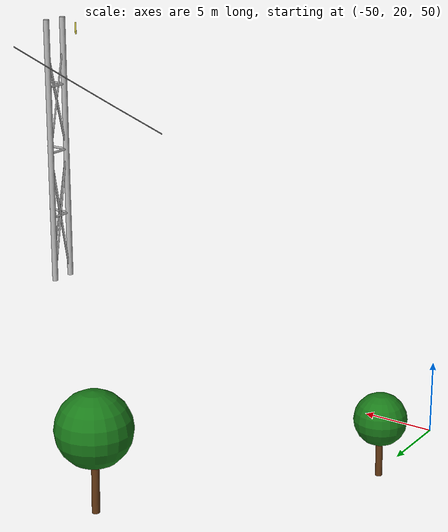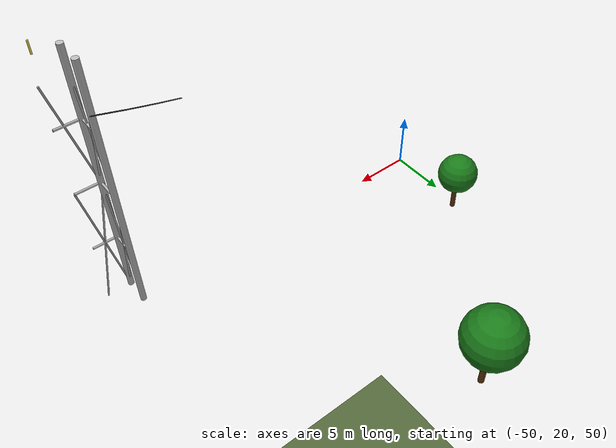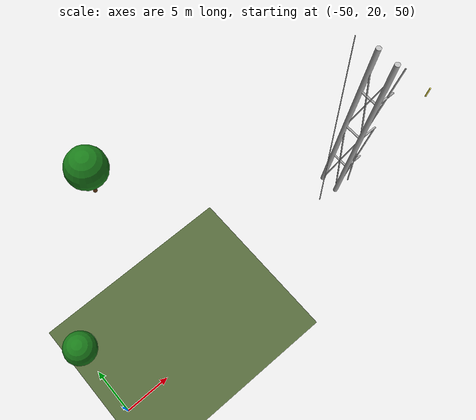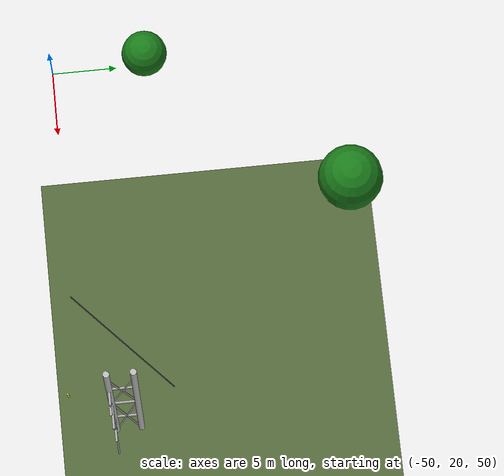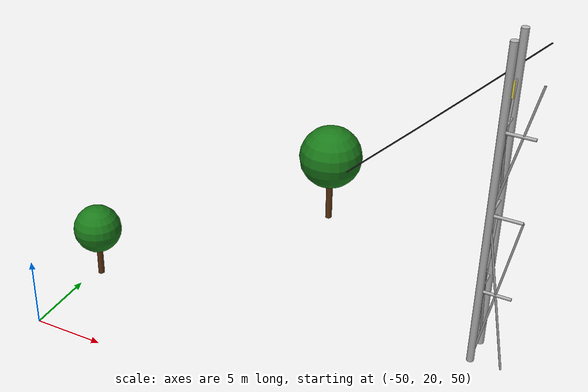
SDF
<sdf version="1.9">
 <world name="power_line_inspection">
  <model name="ground_plane">
   <static>true</static>
   <pose>0 0 -0.01 0 0 0</pose>
   <link name="link">
    <collision name="collision">
     <geometry><plane><normal>0 0 1</normal><size>600 600</size></plane></geometry>
     <surface><friction><ode><mu>1.0</mu><mu2>1.0</mu2></ode></friction></surface>
    </collision>
    <visual name="visual">
     <cast_shadows>false</cast_shadows>
     <geometry><plane><normal>0 0 1</normal><size>600 600</size></plane></geometry>
     <material>
      <ambient>0.28 0.35 0.18 1</ambient>
      <diffuse>0.32 0.40 0.22 1</diffuse>
      <specular>0.02 0.02 0.02 1</specular>
     </material>
    </visual>
   </link>
  </model>
  <model name="peak_tower_col-1-1">
   <static>true</static>
   <pose>-20.186 22.671 66.602 0.00000 0.00000 0.00000</pose>
   <link name="link">
    <visual name="v">
     <geometry><cylinder><radius>0.22</radius><length>20.0000</length></cylinder></geometry>
     <material><ambient>0.72 0.72 0.72 1</ambient><diffuse>0.72 0.72 0.72 1</diffuse></material>
    </visual>
    <collision name="c">
     <geometry><cylinder><radius>0.22</radius><length>20.0000</length></cylinder></geometry>
    </collision>
   </link>
  </model>
  <model name="peak_tower_col-11">
   <static>true</static>
   <pose>-20.186 24.471 66.602 0.00000 0.00000 0.00000</pose>
   <link name="link">
    <visual name="v">
     <geometry><cylinder><radius>0.22</radius><length>20.0000</length></cylinder></geometry>
     <material><ambient>0.72 0.72 0.72 1</ambient><diffuse>0.72 0.72 0.72 1</diffuse></material>
    </visual>
    <collision name="c">
     <geometry><cylinder><radius>0.22</radius><length>20.0000</length></cylinder></geometry>
    </collision>
   </link>
  </model>
  <model name="peak_tower_b1_e0">
   <static>true</static>
   <pose>-20.186 23.571 61.602 -1.57080 0.00000 0.00000</pose>
   <link name="link">
    <visual name="v">
     <geometry><cylinder><radius>0.09</radius><length>1.8000</length></cylinder></geometry>
     <material><ambient>0.68 0.68 0.68 1</ambient><diffuse>0.68 0.68 0.68 1</diffuse></material>
    </visual>
    <collision name="c">
     <geometry><cylinder><radius>0.09</radius><length>1.8000</length></cylinder></geometry>
    </collision>
   </link>
  </model>
  <model name="peak_tower_b1_e3">
   <static>true</static>
   <pose>-19.286 22.671 61.602 0.00000 -1.57080 0.00000</pose>
   <link name="link">
    <visual name="v">
     <geometry><cylinder><radius>0.09</radius><length>1.8000</length></cylinder></geometry>
     <material><ambient>0.68 0.68 0.68 1</ambient><diffuse>0.68 0.68 0.68 1</diffuse></material>
    </visual>
    <collision name="c">
     <geometry><cylinder><radius>0.09</radius><length>1.8000</length></cylinder></geometry>
    </collision>
   </link>
  </model>
  <model name="peak_tower_b2_e0">
   <static>true</static>
   <pose>-20.186 23.571 66.602 -1.57080 0.00000 0.00000</pose>
   <link name="link">
    <visual name="v">
     <geometry><cylinder><radius>0.09</radius><length>1.8000</length></cylinder></geometry>
     <material><ambient>0.68 0.68 0.68 1</ambient><diffuse>0.68 0.68 0.68 1</diffuse></material>
    </visual>
    <collision name="c">
     <geometry><cylinder><radius>0.09</radius><length>1.8000</length></cylinder></geometry>
    </collision>
   </link>
  </model>
  <model name="peak_tower_b2_e3">
   <static>true</static>
   <pose>-19.286 22.671 66.602 0.00000 -1.57080 0.00000</pose>
   <link name="link">
    <visual name="v">
     <geometry><cylinder><radius>0.09</radius><length>1.8000</length></cylinder></geometry>
     <material><ambient>0.68 0.68 0.68 1</ambient><diffuse>0.68 0.68 0.68 1</diffuse></material>
    </visual>
    <collision name="c">
     <geometry><cylinder><radius>0.09</radius><length>1.8000</length></cylinder></geometry>
    </collision>
   </link>
  </model>
  <model name="peak_tower_b3_e0">
   <static>true</static>
   <pose>-20.186 23.571 71.602 -1.57080 0.00000 0.00000</pose>
   <link name="link">
    <visual name="v">
     <geometry><cylinder><radius>0.09</radius><length>1.8000</length></cylinder></geometry>
     <material><ambient>0.68 0.68 0.68 1</ambient><diffuse>0.68 0.68 0.68 1</diffuse></material>
    </visual>
    <collision name="c">
     <geometry><cylinder><radius>0.09</radius><length>1.8000</length></cylinder></geometry>
    </collision>
   </link>
  </model>
  <model name="peak_tower_b3_e3">
   <static>true</static>
   <pose>-19.286 22.671 71.602 0.00000 -1.57080 0.00000</pose>
   <link name="link">
    <visual name="v">
     <geometry><cylinder><radius>0.09</radius><length>1.8000</length></cylinder></geometry>
     <material><ambient>0.68 0.68 0.68 1</ambient><diffuse>0.68 0.68 0.68 1</diffuse></material>
    </visual>
    <collision name="c">
     <geometry><cylinder><radius>0.09</radius><length>1.8000</length></cylinder></geometry>
    </collision>
   </link>
  </model>
  <model name="peak_tower_diag0_0a">
   <static>true</static>
   <pose>-20.186 23.571 61.602 -0.17809 0.00000 0.00000</pose>
   <link name="link">
    <visual name="v">
     <geometry><cylinder><radius>0.063</radius><length>10.1607</length></cylinder></geometry>
     <material><ambient>0.65 0.65 0.65 1</ambient><diffuse>0.65 0.65 0.65 1</diffuse></material>
    </visual>
    <collision name="c">
     <geometry><cylinder><radius>0.063</radius><length>10.1607</length></cylinder></geometry>
    </collision>
   </link>
  </model>
  <model name="peak_tower_diag0_0b">
   <static>true</static>
   <pose>-20.186 23.571 61.602 0.17809 0.00000 0.00000</pose>
   <link name="link">
    <visual name="v">
     <geometry><cylinder><radius>0.063</radius><length>10.1607</length></cylinder></geometry>
     <material><ambient>0.65 0.65 0.65 1</ambient><diffuse>0.65 0.65 0.65 1</diffuse></material>
    </visual>
    <collision name="c">
     <geometry><cylinder><radius>0.063</radius><length>10.1607</length></cylinder></geometry>
    </collision>
   </link>
  </model>
  <model name="peak_tower_diag0_1a">
   <static>true</static>
   <pose>-20.186 23.571 70.602 -0.22131 0.00000 0.00000</pose>
   <link name="link">
    <visual name="v">
     <geometry><cylinder><radius>0.063</radius><length>8.2000</length></cylinder></geometry>
     <material><ambient>0.65 0.65 0.65 1</ambient><diffuse>0.65 0.65 0.65 1</diffuse></material>
    </visual>
    <collision name="c">
     <geometry><cylinder><radius>0.063</radius><length>8.2000</length></cylinder></geometry>
    </collision>
   </link>
  </model>
  <model name="peak_tower_diag0_1b">
   <static>true</static>
   <pose>-20.186 23.571 70.602 0.22131 0.00000 0.00000</pose>
   <link name="link">
    <visual name="v">
     <geometry><cylinder><radius>0.063</radius><length>8.2000</length></cylinder></geometry>
     <material><ambient>0.65 0.65 0.65 1</ambient><diffuse>0.65 0.65 0.65 1</diffuse></material>
    </visual>
    <collision name="c">
     <geometry><cylinder><radius>0.063</radius><length>8.2000</length></cylinder></geometry>
    </collision>
   </link>
  </model>
  <model name="peak_tower_diag2_0a">
   <static>true</static>
   <pose>-19.286 22.671 61.602 0.00000 0.17809 0.00000</pose>
   <link name="link">
    <visual name="v">
     <geometry><cylinder><radius>0.063</radius><length>10.1607</length></cylinder></geometry>
     <material><ambient>0.65 0.65 0.65 1</ambient><diffuse>0.65 0.65 0.65 1</diffuse></material>
    </visual>
    <collision name="c">
     <geometry><cylinder><radius>0.063</radius><length>10.1607</length></cylinder></geometry>
    </collision>
   </link>
  </model>
  <model name="peak_tower_diag2_0b">
   <static>true</static>
   <pose>-19.286 22.671 61.602 0.00000 -0.17809 0.00000</pose>
   <link name="link">
    <visual name="v">
     <geometry><cylinder><radius>0.063</radius><length>10.1607</length></cylinder></geometry>
     <material><ambient>0.65 0.65 0.65 1</ambient><diffuse>0.65 0.65 0.65 1</diffuse></material>
    </visual>
    <collision name="c">
     <geometry><cylinder><radius>0.063</radius><length>10.1607</length></cylinder></geometry>
    </collision>
   </link>
  </model>
  <model name="peak_tower_diag2_1a">
   <static>true</static>
   <pose>-19.286 22.671 70.602 0.00000 0.22131 0.00000</pose>
   <link name="link">
    <visual name="v">
     <geometry><cylinder><radius>0.063</radius><length>8.2000</length></cylinder></geometry>
     <material><ambient>0.65 0.65 0.65 1</ambient><diffuse>0.65 0.65 0.65 1</diffuse></material>
    </visual>
    <collision name="c">
     <geometry><cylinder><radius>0.063</radius><length>8.2000</length></cylinder></geometry>
    </collision>
   </link>
  </model>
  <model name="peak_tower_insL">
   <static>true</static>
   <pose>-19.286 20.071 75.352 3.14159 0.00000 0.00000</pose>
   <link name="link">
    <visual name="v">
     <geometry><cylinder><radius>0.06</radius><length>0.9000</length></cylinder></geometry>
     <material><ambient>0.9 0.85 0.3 1</ambient><diffuse>0.9 0.85 0.3 1</diffuse></material>
    </visual>
    <collision name="c">
     <geometry><cylinder><radius>0.06</radius><length>0.9000</length></cylinder></geometry>
    </collision>
   </link>
  </model>
  <model name="wire_R_s32">
   <static>true</static>
   <pose>-26.216 21.610 69.369 -0.79096 0.73405 -0.31828</pose>
   <link name="link">
    <visual name="v">
     <geometry><cylinder><radius>0.04</radius><length>4.1385</length></cylinder></geometry>
     <material><ambient>0.08 0.08 0.08 1</ambient><diffuse>0.08 0.08 0.08 1</diffuse></material>
    </visual>
    <collision name="c">
     <geometry><cylinder><radius>0.04</radius><length>4.1385</length></cylinder></geometry>
    </collision>
   </link>
  </model>
  <model name="wire_R_s33">
   <static>true</static>
   <pose>-23.444 23.794 71.551 -0.78091 0.72907 -0.31157</pose>
   <link name="link">
    <visual name="v">
     <geometry><cylinder><radius>0.04</radius><length>4.1615</length></cylinder></geometry>
     <material><ambient>0.08 0.08 0.08 1</ambient><diffuse>0.08 0.08 0.08 1</diffuse></material>
    </visual>
    <collision name="c">
     <geometry><cylinder><radius>0.04</radius><length>4.1615</length></cylinder></geometry>
    </collision>
   </link>
  </model>
  <model name="wire_R_s34">
   <static>true</static>
   <pose>-20.672 25.979 73.778 -0.77107 0.72408 -0.30503</pose>
   <link name="link">
    <visual name="v">
     <geometry><cylinder><radius>0.04</radius><length>4.1849</length></cylinder></geometry>
     <material><ambient>0.08 0.08 0.08 1</ambient><diffuse>0.08 0.08 0.08 1</diffuse></material>
    </visual>
    <collision name="c">
     <geometry><cylinder><radius>0.04</radius><length>4.1849</length></cylinder></geometry>
    </collision>
   </link>
  </model>
  <model name="tree_18">
   <static>true</static>
   <pose>-37.87 41.85 49.75 0 0 1.95</pose>
   <link name="link">
    <visual name="trunk">
     <pose>0 0 2.127 -0.006 -0.022 0</pose>
     <geometry><cylinder><radius>0.253</radius><length>4.254</length></cylinder></geometry>
     <material><ambient>0.32 0.18 0.05 1</ambient><diffuse>0.38 0.21 0.07 1</diffuse></material>
    </visual>
    <collision name="trunk_c">
     <pose>0 0 2.127 0 0 0</pose>
     <geometry><cylinder><radius>0.253</radius><length>4.254</length></cylinder></geometry>
    </collision>
    <visual name="canopy">
     <pose>0 0 5.615 0 0 0</pose>
     <geometry><sphere><radius>2.475</radius></sphere></geometry>
     <material><ambient>0.07 0.38 0.07 1</ambient><diffuse>0.10 0.48 0.10 1</diffuse></material>
    </visual>
    <collision name="canopy_c">
     <pose>0 0 5.615 0 0 0</pose>
     <geometry><sphere><radius>2.475</radius></sphere></geometry>
    </collision>
   </link>
  </model>
  <model name="tree_19">
   <static>true</static>
   <pose>-49.80 27.27 49.58 0 0 3.68</pose>
   <link name="link">
    <visual name="trunk">
     <pose>0 0 1.504 -0.028 -0.014 0</pose>
     <geometry><cylinder><radius>0.226</radius><length>3.008</length></cylinder></geometry>
     <material><ambient>0.32 0.18 0.05 1</ambient><diffuse>0.38 0.21 0.07 1</diffuse></material>
    </visual>
    <collision name="trunk_c">
     <pose>0 0 1.504 0 0 0</pose>
     <geometry><cylinder><radius>0.226</radius><length>3.008</length></cylinder></geometry>
    </collision>
    <visual name="canopy">
     <pose>0 0 3.971 0 0 0</pose>
     <geometry><sphere><radius>1.750</radius></sphere></geometry>
     <material><ambient>0.07 0.38 0.07 1</ambient><diffuse>0.10 0.48 0.10 1</diffuse></material>
    </visual>
    <collision name="canopy_c">
     <pose>0 0 3.971 0 0 0</pose>
     <geometry><sphere><radius>1.750</radius></sphere></geometry>
    </collision>
   </link>
  </model>
 </world>
</sdf>
